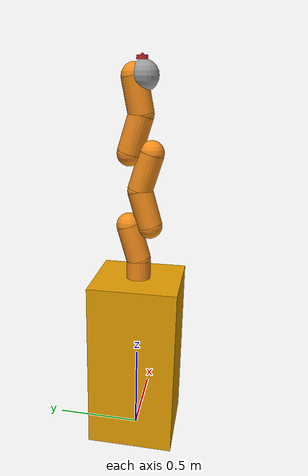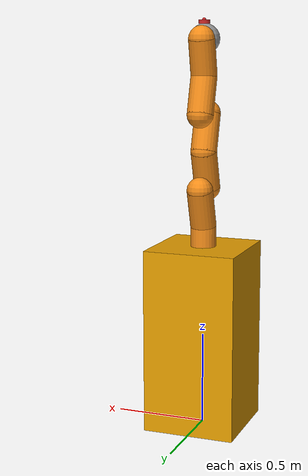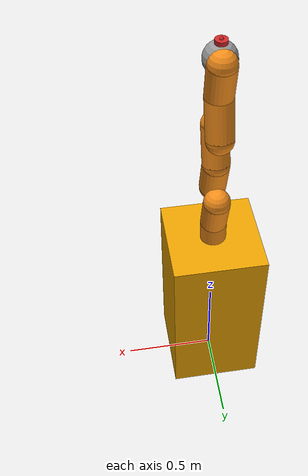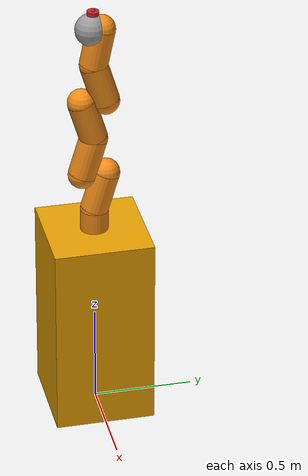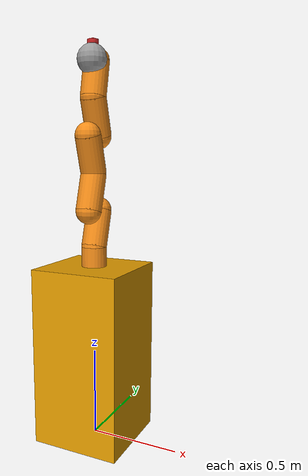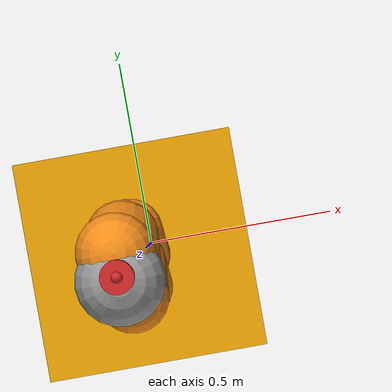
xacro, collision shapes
<?xml version="1.0"?>
<robot xmlns:xacro="http://www.ros.org/wiki/xacro" name="single_lwr_robot">

	<!-- Include all models -->
	<xacro:include filename="$(find lwr_description)/model/kuka_lwr.urdf.xacro"/>

	<!-- and assemble your robot -->
	<link name="box">
	  <inertial>
			<mass value="5.0"/>
			<origin rpy="0 0 0" xyz="0 0 0"/>
			<inertia ixx="0.01"
             iyy="0.01"
             izz="0.01"
             ixy="0" iyz="0" ixz="0"/>
		</inertial>
		<visual>
		  <origin xyz="0 0 0.5" rpy="0 0 0"/>
			<geometry>
			  <box size="0.5 0.5 1"/>
			</geometry>
		</visual>
		<collision>
			<origin xyz="0 0 0.5" rpy="0 0 0"/>
			<geometry>
			  <box size="0.5 0.5 1"/>
			</geometry>
		</collision>
	</link>

	<gazebo reference="box">
		<static>true</static>>
	</gazebo>

	<link name="world" />

	<joint name="world_joint"  type="fixed">
	  <parent link="world"/>
	  <child link="box"/>
	</joint>

	<!-- using the models -->
	<xacro:kuka_lwr parent="box" name="lwr">
		<origin xyz="0 0 1" rpy="0 0 0"/>
	</xacro:kuka_lwr>

</robot>

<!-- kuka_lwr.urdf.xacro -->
<robot name="kuka_lwr" xmlns:xacro="http://ros.org/wiki/xacro">

	<!-- utils /-->
	<xacro:include filename="$(find lwr_description)/model/utils.xacro"/>
	<xacro:include filename="$(find lwr_description)/model/kuka_materials.xacro"
	/>

	<!-- gazebo and transmission models /-->
	<xacro:include filename="$(find lwr_description)/model/kuka_lwr.gazebo.xacro"/>
	<xacro:include filename="$(find lwr_description)/model/kuka_lwr.transmission.xacro"/>

	<!-- properties /-->
	<xacro:property name="base_mass" value="2.0"/>
	<xacro:property name="link_mass" value="2.35"/>
	<xacro:property name="wrist_mass" value="1.1"/>
	<xacro:property name="tip_mass" value="0.25"/>
	<xacro:property name="velocity_scale" value="1"/>
	<xacro:property name="effort_scale" value="1"/>

	<xacro:property name="max_stiffness" value="5000"/>
	<xacro:property name="min_stiffness" value="0"/>
	<xacro:property name="rate_stiffness" value="20000"/> <!-- reflex to stiffness -->

	<!-- URDF model /-->
	<xacro:macro name="kuka_lwr" params="parent name *origin">

		<!-- First (shoulder) element of the arm. Fixed to its parent. -->
		<joint name="${parent}_${name}_base_joint" type="fixed">
			<insert_block name="origin"/>
			<origin xyz="0 0 0" rpy="0 0 0"/>
			<parent link="${parent}"/>
			<child link="${name}_base_link"/>
		</joint>

		<link name="${name}_base_link">
			<inertial>
				<mass value="${base_mass}"/>
				<origin xyz="0 0 0.055"  />
				<cylinder_inertia_def radius="0.06" length="0.11" mass="${base_mass}"/>
			</inertial>
			<visual>
				<origin xyz="0 0 0" rpy="0 0 ${M_PI}"/>
				<geometry>
					<mesh filename="package://lwr_description/meshes/lwr4plus/visual/base.STL"/>
				</geometry>
				<material name="Kuka/Orange"/>
			</visual>
			<collision>
				<origin xyz="0 0 0.055" rpy="0 0 ${M_PI}"/>
				<geometry>
					<cylinder radius="0.07" length="0.11"/>
				</geometry>
			</collision>
		</link>

		<!-- Second segment of the arm. Joint along z-axis -->
		<joint name="${name}_a1_joint" type="revolute">
			<origin xyz="0 0 0.11" rpy="0 0 0"/>
			<axis xyz="0 0 1"/>
			<limit lower="${-170 * M_PI / 180}" upper="${170 * M_PI / 180}" effort="176" velocity="${velocity_scale * 110 * M_PI / 180}" />
			<dynamics friction="0.0" damping="0.0"/>
			<parent link="${name}_base_link"/>
			<child link="${name}_1_link"/>
		</joint>

		<joint name="${name}_a1_joint_stiffness" type="revolute">
			<axis xyz="0 0 1"/>
			<limit lower="${min_stiffness}" upper="${max_stiffness}" effort="0" velocity="${rate_stiffness}" />
			<safety_controller soft_lower_limit="${min_stiffness}" soft_upper_limit="${max_stiffness}" k_position="30" k_velocity="30"/>
			<parent link="${name}_base_link"/>
			<child link="${name}_1_link_dummy"/>
		</joint>
		<link name="${name}_1_link_dummy"/>

		<link name="${name}_1_link">
			<inertial>
				<mass value="${link_mass}"/>
				<origin rpy="0 0 0" xyz="0 -0.06 0.130"/>
				<cuboid_inertia_def length="0.12" width="0.06" height="0.260" mass="${link_mass}"/>
			</inertial>
			<visual>
				<origin xyz="0 0 -0.008" rpy="0 0 ${M_PI}"/>
				<geometry>
					<mesh filename="package://lwr_description/meshes/lwr4plus/visual/link_1.STL"/>
				</geometry>
				<material name="Kuka/Orange"/>
			</visual>
			<collision>
				<origin xyz="0 0 0.0" rpy="0 0 0"/>
				<geometry>
					<sphere radius="0.07"/>
				</geometry>
			</collision>
			<collision>
				<origin xyz="0 0.06 0.2" rpy="0 0 0"/>
				<geometry>
					<sphere radius="0.07"/>
				</geometry>
			</collision>
			<collision>
				<origin xyz="0 0.03 0.1" rpy="-0.291 0 0"/>
				<geometry>
					<cylinder radius="0.07" length="0.208"/>
				</geometry>
			</collision>
		</link>

		<!-- Third segment of the arm. Joint along y-axis -->
		<joint name="${name}_a2_joint" type="revolute">
			<origin xyz="0 0 0.2005" rpy="0 0 0"/>
			<axis xyz="0 -1 0"/>
			<limit lower="${-120 * M_PI / 180}" upper="${120 * M_PI / 180}" effort="176" velocity="${velocity_scale * 110 * M_PI / 180}" />
			<dynamics friction="0.0" damping="0.0"/>
			<parent link="${name}_1_link"/>
			<child link="${name}_2_link"/>
		</joint>

		<joint name="${name}_a2_joint_stiffness" type="revolute">
			<axis xyz="0 0 1"/>
			<limit lower="${min_stiffness}" upper="${max_stiffness}" effort="0" velocity="${rate_stiffness}" />
			<safety_controller soft_lower_limit="${min_stiffness}" soft_upper_limit="${max_stiffness}" k_position="30" k_velocity="30"/>
			<parent link="${name}_1_link"/>
			<child link="${name}_2_link_dummy"/>
		</joint>
		<link name="${name}_2_link_dummy"/>

		<link name="${name}_2_link">
			<inertial>
				<mass value="${link_mass}"/>
				<origin rpy="0 0 0" xyz="0 0.06 ${0.130 - 0.06}"/>
				<cuboid_inertia_def length="0.12" width="0.06" height="0.260" mass="${link_mass}"/>
			</inertial>

			<visual>
				<origin xyz="0 0 0.0" rpy="0 0 ${M_PI}"/>
				<geometry>
					<mesh filename="package://lwr_description/meshes/lwr4plus/visual/link_2.STL"/>
				</geometry>
				<material name="Kuka/Orange"/>
			</visual>
			<collision>
				<origin xyz="0 0 0.2" rpy="0 0 0"/>
				<geometry>
					<sphere radius="0.07"/>
				</geometry>
			</collision>
			<collision>
				<origin xyz="0 -0.06 0.0" rpy="0 0 0"/>
				<geometry>
					<sphere radius="0.07"/>
				</geometry>
			</collision>
			<collision>
				<origin xyz="0 -0.03 0.1" rpy="-0.291 0 0"/>
				<geometry>
					<cylinder radius="0.07" length="0.208"/>
				</geometry>
			</collision>
		</link>

		<!-- Fourth element of the arm. z-axis -->
		<joint name="${name}_e1_joint" type="revolute">
			<origin xyz="0 0 0.20" rpy="0 0 0"/>
			<axis xyz="0 0 1"/>
			<limit lower="${-170 * M_PI / 180}" upper="${170 * M_PI / 180}" effort="100" velocity="${velocity_scale * 128 * M_PI / 180}" />
			<dynamics friction="0.0" damping="0.0"/>
			<parent link="${name}_2_link"/>
			<child link="${name}_3_link"/>
		</joint>

		<joint name="${name}_e1_joint_stiffness" type="revolute">
			<axis xyz="0 0 1"/>
			<limit lower="${min_stiffness}" upper="${max_stiffness}" effort="0" velocity="${rate_stiffness}" />
			<safety_controller soft_lower_limit="${min_stiffness}" soft_upper_limit="${max_stiffness}" k_position="30" k_velocity="30"/>
			<parent link="${name}_2_link"/>
			<child link="${name}_3_link_dummy"/>
		</joint>
		<link name="${name}_3_link_dummy"/>

		<link name="${name}_3_link">
			<inertial>
				<mass value="${link_mass}"/>
				<origin rpy="0 0 0" xyz="0 0.06 0.130"/>
				<cuboid_inertia_def length="0.12" width="0.06" height="0.260" mass="${link_mass}"/>
			</inertial>

			<visual>
				<origin xyz="0 0 -0.008" rpy="0 0 ${M_PI}"/>
				<geometry>
					<mesh filename="package://lwr_description/meshes/lwr4plus/visual/link_3.STL"/>
				</geometry>
				<material name="Kuka/Orange"/>
			</visual>
			<collision>
				<origin xyz="0 0 0.0" rpy="0 0 0"/>
				<geometry>
					<sphere radius="0.07"/>
				</geometry>
			</collision>
			<collision>
				<origin xyz="0 -0.06 0.2" rpy="0 0 0"/>
				<geometry>
					<sphere radius="0.07"/>
				</geometry>
			</collision>
			<collision>
				<origin xyz="0 -0.03 0.1" rpy="0.291 0 0"/>
				<geometry>
					<cylinder radius="0.07" length="0.208"/>
				</geometry>
			</collision>
		</link>

		<!-- fifth element of the arm. x-axis -->
		<joint name="${name}_a3_joint" type="revolute">
			<origin xyz="0 0 0.20" rpy="0 0 0"/>
			<axis xyz="0 1 0"/>
			<limit lower="${-120 * M_PI / 180}" upper="${120 * M_PI / 180}" effort="100" velocity="${velocity_scale * 128 * M_PI / 180}" />
			<dynamics friction="0.0" damping="0.0"/>
			<parent link="${name}_3_link"/>
			<child link="${name}_4_link"/>
		</joint>

		<joint name="${name}_a3_joint_stiffness" type="revolute">
			<axis xyz="0 0 1"/>
			<limit lower="${min_stiffness}" upper="${max_stiffness}" effort="0" velocity="${rate_stiffness}" />
			<safety_controller soft_lower_limit="${min_stiffness}" soft_upper_limit="${max_stiffness}" k_position="30" k_velocity="30"/>
			<parent link="${name}_3_link"/>
			<child link="${name}_4_link_dummy"/>
		</joint>
		<link name="${name}_4_link_dummy"/>

		<link name="${name}_4_link">
			<inertial>
				<mass value="${link_mass}"/>
				<origin rpy="0 0 0" xyz="0 -0.06 ${0.130 - 0.06}"/>
				<cuboid_inertia_def length="0.12" width="0.06" height="0.2600" mass="${link_mass}"/>
			</inertial>

			<visual>
				<origin xyz="0 0 0.0" rpy="0 0 ${M_PI}"/>
				<geometry>
					<mesh filename="package://lwr_description/meshes/lwr4plus/visual/link_4.STL"/>
				</geometry>
				<material name="Kuka/Orange"/>
			</visual>
			<collision>
			<origin xyz="0 0 0.2" rpy="0 0 0"/>
			<geometry>
				<sphere radius="0.07"/>
			</geometry>
			</collision>
			<collision>
				<origin xyz="0 0.06 0.0" rpy="0 0 0"/>
				<geometry>
					<sphere radius="0.07"/>
				</geometry>
			</collision>
			<collision>
				<origin xyz="0 0.03 0.1" rpy="0.291 0 0"/>
				<geometry>
					<cylinder radius="0.07" length="0.208"/>
				</geometry>
			</collision>
		</link>

		<!-- Sixth element of the arm. z-axis -->
		<joint name="${name}_a4_joint" type="revolute">
			<origin xyz="0 0 0.20" rpy="0 0 0"/>
			<axis xyz="0 0 1"/>
			<limit lower="${-170 * M_PI / 180}" upper="${170 * M_PI / 180}" effort="100" velocity="${velocity_scale * 204 * M_PI / 180}" />
			<dynamics friction="0.0" damping="0.0"/>
			<parent link="${name}_4_link"/>
			<child link="${name}_5_link"/>
		</joint>

		<joint name="${name}_a4_joint_stiffness" type="revolute">
			<axis xyz="0 0 1"/>
			<limit lower="${min_stiffness}" upper="${max_stiffness}" effort="0" velocity="${rate_stiffness}" />
			<safety_controller soft_lower_limit="${min_stiffness}" soft_upper_limit="${max_stiffness}" k_position="30" k_velocity="30"/>
			<parent link="${name}_4_link"/>
			<child link="${name}_5_link_dummy"/>
		</joint>
		<link name="${name}_5_link_dummy"/>

		<link name="${name}_5_link">
			<inertial>
				<mass value="${link_mass}"/>
				<origin rpy="0 0 0" xyz="0 0 0.124"/>
				<cuboid_inertia_def length="0.12" width="0.06" height="0.248" mass="${link_mass}"/>
			</inertial>

			<visual>
				<origin xyz="0 0 -0.008" rpy="0 0 ${M_PI}"/>
				<geometry name="${name}_5_geom">
					<mesh filename="package://lwr_description/meshes/lwr4plus/visual/link_5.STL"/>
				</geometry>
				<material name="Kuka/Orange"/>
			</visual>

			<collision>
				<origin xyz="0 0 0.0" rpy="0 0 0"/>
				<geometry>
					<sphere radius="0.07"/>
				</geometry>
			</collision>
			<collision>
				<origin xyz="0 0.04 0.19" rpy="0 0 0"/>
				<geometry>
					<sphere radius="0.07"/>
				</geometry>
			</collision>
			<collision>
				<origin xyz="0 0.02 0.095" rpy="-0.207 0 0"/>
				<geometry>
					<cylinder radius="0.07" length="0.198"/>
				</geometry>
			</collision>
		</link>

		<!-- Seventh element of the arm. z-axis -->
		<joint name="${name}_a5_joint" type="revolute">
			<origin xyz="0 0 0.19" rpy="0 0 0"/>
			<axis xyz="0 -1 0"/>
			<limit lower="${-120 * M_PI / 180}" upper="${120 * M_PI / 180}" effort="38" velocity="${velocity_scale * 184 * M_PI / 180}" />
			<dynamics friction="0.0" damping="0.0"/>
			<parent link="${name}_5_link"/>
			<child link="${name}_6_link"/>
		</joint>

		<joint name="${name}_a5_joint_stiffness" type="revolute">
			<axis xyz="0 0 1"/>
			<limit lower="${min_stiffness}" upper="${max_stiffness}" effort="0" velocity="${rate_stiffness}" />
			<safety_controller soft_lower_limit="${min_stiffness}" soft_upper_limit="${max_stiffness}" k_position="30" k_velocity="30"/>
			<parent link="${name}_5_link"/>
			<child link="${name}_6_link_dummy"/>
		</joint>
		<link name="${name}_6_link_dummy"/>

		<link name="${name}_6_link">
			<inertial>
				<mass value="${wrist_mass}"/>
				<origin rpy="0 0 0" xyz="0 0 0.0625"/>
				<cuboid_inertia_def length="0.125" width="0.125" height="0.125" mass="${wrist_mass}"/>
			</inertial>

			<visual>
				<origin xyz="0 0 0" rpy="0 0 ${M_PI}"/>
				<geometry>
					<mesh filename="package://lwr_description/meshes/lwr4plus/visual/link_6.STL"/>
				</geometry>
			<material name="Kuka/Grey"/>
			</visual>
			<collision>
			<origin xyz="0 -0.01 0" rpy="0 0 ${M_PI}"/>
			<geometry>
				<sphere radius="0.08"/>
			</geometry>
			</collision>
		</link>

		<!-- Eighth element of the arm. z-axis -->
		<joint name="${name}_a6_joint" type="revolute">
			<origin xyz="0 0 0.078" rpy="0 0 0"/>
			<axis xyz="0 0 1"/>
			<limit lower="${-170 * M_PI / 180}" upper="${170 * M_PI / 180}" effort="38" velocity="${velocity_scale * 184 * M_PI / 180}" />
			<dynamics friction="0.0" damping="0.0"/>
			<parent link="${name}_6_link"/>
			<child link="${name}_7_link"/>
		</joint>

		<joint name="${name}_a6_joint_stiffness" type="revolute">
			<axis xyz="0 0 1"/>
			<limit lower="${min_stiffness}" upper="${max_stiffness}" effort="0" velocity="${rate_stiffness}" />
			<safety_controller soft_lower_limit="${min_stiffness}" soft_upper_limit="${max_stiffness}" k_position="30" k_velocity="30"/>
			<parent link="${name}_6_link"/>
			<child link="${name}_7_link_dummy"/>
		</joint>
		<link name="${name}_7_link_dummy"/>

		<link name="${name}_7_link">
			<inertial>
				<mass value="${tip_mass}"/>
				<origin xyz="0 0 0"/>
				<cuboid_inertia_def length="0.1" width="0.1" height="0.1" mass="${tip_mass}"/>
			</inertial>
			<visual>
				<origin xyz="0 0 0" rpy="0 0 ${M_PI}"/>
				<geometry>
					<mesh filename="package://lwr_description/meshes/lwr4plus/visual/link_7.STL"/>
				</geometry>
			<material name="Kuka/DarkGrey"/>
			</visual>

		</link>

		<joint name="sensor_joint" type="fixed">
			<origin xyz="0 0 0" rpy="0 0 0"/>
			<parent link="${name}_7_link"/>
			<child link="end_effector"/>
		</joint>

		<link name="end_effector">
			<inertial>
				<mass value="0.00001"/>
				<origin xyz="0 0 0.005"/>
				<cylinder_inertia_def radius="0.03" length="0.01" mass="0.00001"/>
			</inertial>
			<visual>
				<origin xyz="0 0 0.01" rpy="0 0 0"/>
				<geometry>
				  <cylinder radius="0.03" length="0.02"/>
				</geometry>
			<material name="Red"/>
			</visual>
			<visual>
				<origin xyz="0 0 0.02" rpy="0 0 0"/>
				<geometry>
				  <sphere radius="0.01" />
				</geometry>
			<material name="Red"/>
			</visual>

			<collision>
			<origin xyz="0 0 0.01" rpy="0 0 0"/>
			<geometry>
				<cylinder radius="0.03" length="0.02"/>
			</geometry>
			</collision>
			<collision>
				<origin xyz="0 0 0.02" rpy="0 0 0"/>
				<geometry>
				  <sphere radius="0.01" />
				</geometry>
			</collision>

		</link>

		<xacro:kuka_lwr_gazebo name="${name}"/>
		<xacro:kuka_lwr_transmission name="${name}"/>

	</xacro:macro>

</robot>
